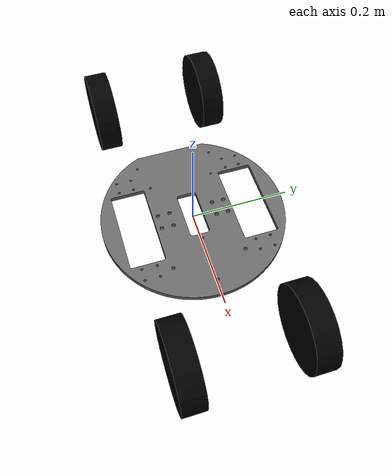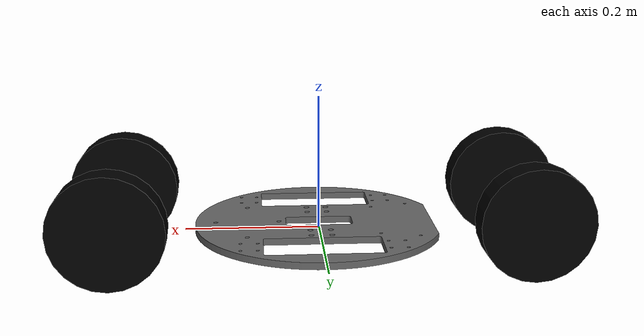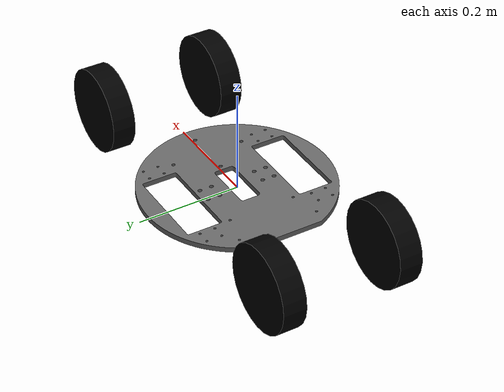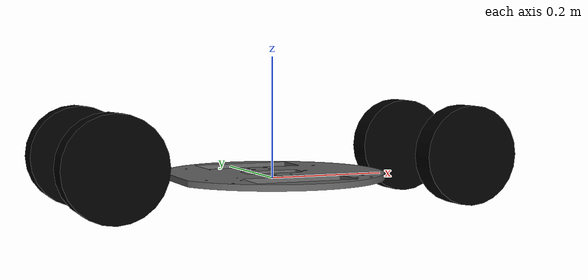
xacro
<?xml version="1.0"?>
<robot name="hoverboard_robot" xmlns:xacro="http://ros.org/wiki/xacro">

    <xacro:include filename="materials.xacro" />
    <xacro:include filename="macros.xacro" />
    <xacro:include filename="wheels.xacro" />
    <xacro:include filename="ros2_control.xacro" />

    <xacro:property name="plate_radius" value="0.37" />
    <xacro:property name="plate_height" value="0.01" />

    <xacro:property name="chassis_weight" value="1.0" />

    <xacro:property name="driving_wheel_diameter" value="0.165" />
    <xacro:property name="driving_wheel_thickness" value="0.045" />
    <xacro:property name="driving_wheel_weight" value="2.2" />
    <xacro:property name="driving_wheel_base_gap" value="0.01" />

    <xacro:property name="caster_wheel_diameter" value="0.09" />
    <xacro:property name="caster_wheel_weight" value="0.1" />

    <link name="base_link">
    </link>

    <link name="plate">
        <visual>
            <origin xyz="0 0 0" rpy="0 0 -${pi/2}"/>
            <geometry>
                <mesh filename="package://hoverboard_demo_description/meshes/plate.stl" scale="0.001 0.001 0.001"/>
            </geometry>
            <material name="gray"/>
        </visual>
        <collision>
            <origin xyz="0 0 0" rpy="0 0 -${pi/2}"/>
            <geometry>
                <cylinder radius="${plate_radius}" length="${plate_height}"/>
            </geometry>
        </collision>
        <xacro:cylinder_inertia m="0.5" r="${plate_radius}" h="${plate_height}" roll="${pi/2}"/>
    </link>

    <joint name="base_link_plate_joint" type="fixed">
        <origin rpy="0 0 0" xyz="0 0 0" />
        <parent link="base_link" />
        <child link="plate" />
    </joint>

    <xacro:driving_wheel suffix="front_left" reflect="1" position="0.3"/>
    <xacro:driving_wheel suffix="front_right" reflect="-1" position="0.3"/>

    <xacro:driving_wheel suffix="back_left" reflect="1" position="-0.3"/>
    <xacro:driving_wheel suffix="back_right" reflect="-1" position="-0.3"/>

    <xacro:hoverboard_ros2_control name="hoverboard" />

</robot>

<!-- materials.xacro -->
<robot xmlns:xacro="http://ros.org/wiki/xacro">

    <material name="silver">
        <color rgba="0.60 0.60 0.60 1"/>
    </material>

    <material name="gray">
        <color rgba="0.40 0.40 0.40 1"/>
    </material>

    <material name="black">
        <color rgba="0 0 0 1"/>
    </material>

</robot>

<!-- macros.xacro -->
<robot xmlns:xacro="http://ros.org/wiki/xacro">

    <xacro:macro name="default_inertial" params="mass">
        <inertial>
            <mass value="${mass}" />
            <inertia ixx="1e-3" ixy="0.0" ixz="0.0" iyy="1e-3" iyz="0.0" izz="1e-3"/>
        </inertial>
    </xacro:macro>

    <!-- Define some commonly used intertial properties  -->
    <xacro:macro name="box_inertia" params="m w h d">
        <inertial>
            <origin xyz="0 0 0" rpy="${pi/2} 0 ${pi/2}"/>
            <mass value="${m}"/>
            <inertia ixx="${(m/12) * (h*h + d*d)}" ixy="0.0" ixz="0.0" iyy="${(m/12) * (w*w + d*d)}" iyz="0.0" izz="${(m/12) * (w*w + h*h)}"/>
        </inertial>
    </xacro:macro>

    <xacro:macro name="cylinder_inertia" params="m r h roll">
        <inertial>
            <origin xyz="0 0 0" rpy="${roll} 0 0" />
            <mass value="${m}"/>
            <inertia ixx="${(m/12) * (3*r*r + h*h)}" ixy = "0" ixz = "0" iyy="${(m/12) * (3*r*r + h*h)}" iyz = "0" izz="${(m/2) * (r*r)}"/>
        </inertial>
    </xacro:macro>

    <xacro:macro name="sphere_inertia" params="m r">
        <inertial>
            <mass value="${m}"/>
            <inertia ixx="${(2/5) * m * (r*r)}" ixy="0.0" ixz="0.0" iyy="${(2/5) * m * (r*r)}" iyz="0.0" izz="${(2/5) * m * (r*r)}"/>
        </inertial>
    </xacro:macro>

</robot>

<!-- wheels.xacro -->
<robot xmlns:xacro="http://ros.org/wiki/xacro">

    <!-- TODO: The model is made in a very simple form, it would be nice to make it a bit better. Is someone willing? -->
    <xacro:macro name="driving_wheel" params="suffix reflect position">
        <link name="driving_wheel_${suffix}">
            <visual>
                <origin xyz="0 0 0" rpy="${pi/2} 0 0" />
                <geometry>
                    <cylinder radius="${driving_wheel_diameter/2}" length="${driving_wheel_thickness}"/>
                </geometry>
                <material name="black"/>
            </visual>
            <collision>
                <origin xyz="0 0 0" rpy="${pi/2} 0 0" />
                <contact_coefficients mu="100.0" kp="0.0" kd="0.0" />
                <geometry>
                    <cylinder radius="${driving_wheel_diameter/2}" length="${driving_wheel_thickness}"/>
                </geometry>
            </collision>
            <xacro:cylinder_inertia m="${driving_wheel_weight}" r="${driving_wheel_diameter/2}" h="${driving_wheel_thickness}" roll="${pi/2}"/>
        </link>

        <joint name="driving_wheel_${suffix}_joint" type="continuous">
            <axis xyz="0 1 0" rpy="0 0 0" />
            <parent link="base_link"/>
            <child link="driving_wheel_${suffix}"/>
            <origin xyz="${position} ${(plate_radius+driving_wheel_thickness+driving_wheel_base_gap-0.195)/2*reflect} 0.038" rpy="0 0 0"/>
        </joint>

        <gazebo reference="driving_wheel_${suffix}">
            <mu1 value="0.50"/>
            <mu2 value="3.0"/>
            <kp value="10000000.0" />
            <kd value="100.0" />
            <fdir1 value="0 0 1"/>
            <material>Gazebo/Black</material>
        </gazebo>

    </xacro:macro>

    <xacro:macro name="caster_wheel" params="suffix reflect">
        <link name="caster_wheel_${suffix}">
            <visual>
                <origin xyz="0 0 0" rpy="0 0 0" />
                <geometry>
                    <sphere radius="${caster_wheel_diameter/2}" />
                </geometry>
                <material name="black"/>
            </visual>
            <collision>
                <origin xyz="0 0 0" rpy="0 0 0" />
                <contact_coefficients mu="0.0" kp="0.0" kd="0.0" />
                <geometry>
                    <sphere radius="${caster_wheel_diameter/2}" />
                </geometry>
            </collision>
            <xacro:sphere_inertia m="${caster_wheel_weight}" r="${caster_wheel_diameter/2}"/>
        </link>

        <joint name="caster_wheel_${suffix}_joint" type="fixed">
            <parent link="base_link"/>
            <child link="caster_wheel_${suffix}"/>
            <origin xyz="${0.12*reflect} 0 0" rpy="0 0 0"/>
        </joint>

        <gazebo reference="caster_wheel_${suffix}">
            <mu1 value="0.0"/>
            <mu2 value="0.0"/>
            <kp value="10000000.0" />
            <kd value="100.0" />
            <fdir1 value="0 0 1"/>
            <material>Gazebo/Red</material>
        </gazebo>

    </xacro:macro>

</robot>
